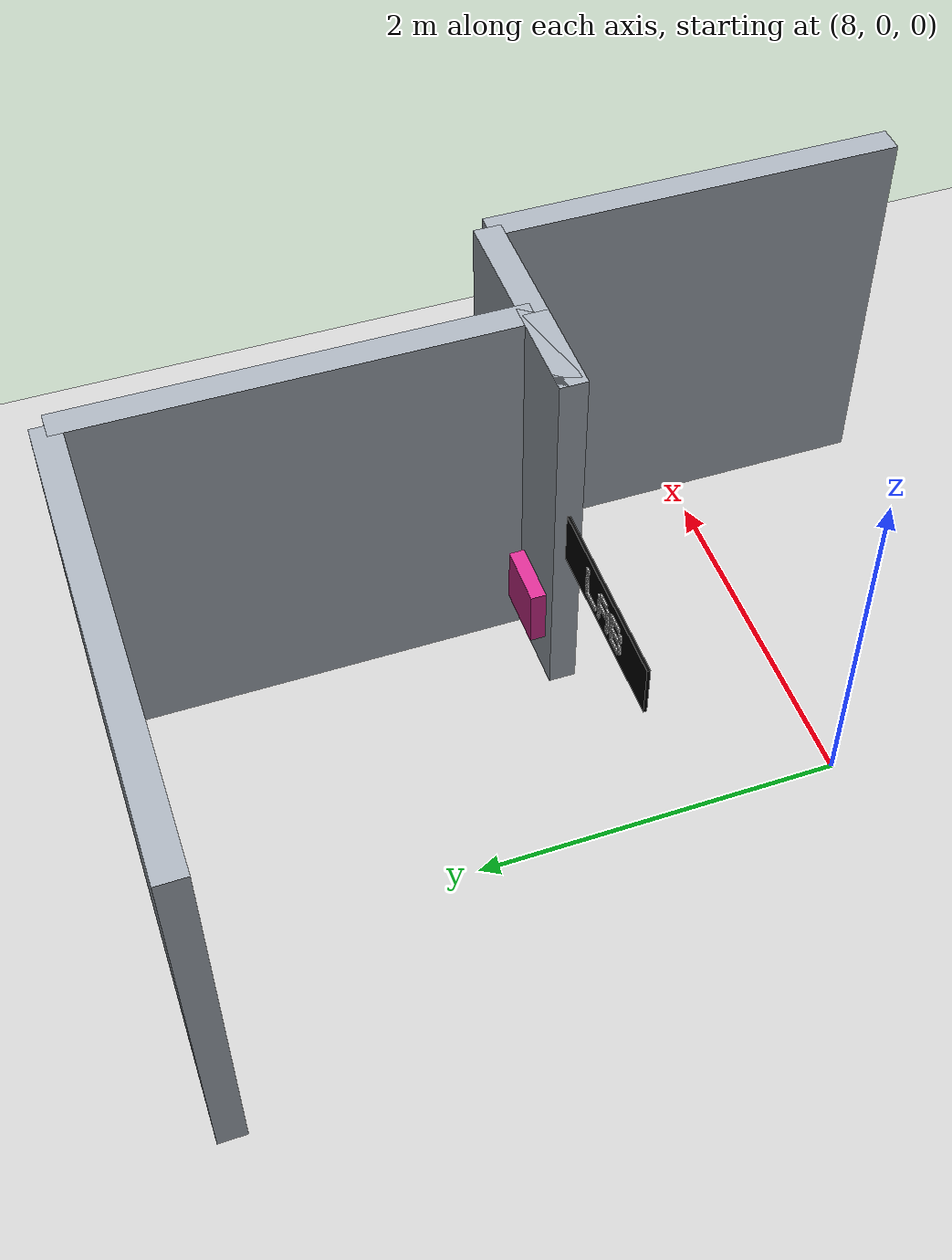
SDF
<sdf version="1.9">
 <world name="default">
  <model name="ground_plane">
   <static>true</static>
   <pose>5.15 0 -0.05 0 0 0</pose>
   <link name="body">
    <collision name="collision"><geometry><box><size>14.3 12 0.1</size></box></geometry></collision>
    <visual name="visual">
     <geometry><box><size>14.3 12 0.1</size></box></geometry>
     <material><ambient>0.8 0.8 0.8 1</ambient><diffuse>0.8 0.8 0.8 1</diffuse></material>
    </visual>
   </link>
  </model>
  <model name="end_wall">
   <static>true</static>
   <pose>10.3 0 1.1 0 0 0</pose>
   <link name="body">
    <collision name="collision"><geometry><box><size>0.15 2.3 2.2</size></box></geometry></collision>
    <visual name="visual">
     <geometry><box><size>0.15 2.3 2.2</size></box></geometry>
     <material><ambient>0.65 0.68 0.72 1</ambient><diffuse>0.65 0.68 0.72 1</diffuse></material>
    </visual>
   </link>
  </model>
  <model name="room_1_2_1">
   <static>true</static>
   <pose>9.600000000000001 2.3499999999999996 1.1 0 0 0</pose>
   <link name="body">
    <collision name="collision"><geometry><box><size>0.15 2.4 2.2</size></box></geometry></collision>
    <visual name="visual">
     <geometry><box><size>0.15 2.4 2.2</size></box></geometry>
     <material><ambient>0.65 0.68 0.72 1</ambient><diffuse>0.65 0.68 0.72 1</diffuse></material>
    </visual>
   </link>
  </model>
  <model name="room_end_1_2">
   <static>true</static>
   <pose>8.3 3.55 1.1 0 0 0</pose>
   <link name="body">
    <collision name="collision"><geometry><box><size>2.6 0.15 2.2</size></box></geometry></collision>
    <visual name="visual">
     <geometry><box><size>2.6 0.15 2.2</size></box></geometry>
     <material><ambient>0.65 0.68 0.72 1</ambient><diffuse>0.65 0.68 0.72 1</diffuse></material>
    </visual>
   </link>
  </model>
  <model name="jamb_1_2_1">
   <static>true</static>
   <pose>9.325000000000001 1.15 1.1 0 0 0</pose>
   <link name="body">
    <collision name="collision"><geometry><box><size>0.55 0.15 2.2</size></box></geometry></collision>
    <visual name="visual">
     <geometry><box><size>0.55 0.15 2.2</size></box></geometry>
     <material><ambient>0.65 0.68 0.72 1</ambient><diffuse>0.65 0.68 0.72 1</diffuse></material>
    </visual>
   </link>
  </model>
  <model name="hall_end_1">
   <static>true</static>
   <pose>9.675 1.15 1.1 0 0 0</pose>
   <link name="body">
    <collision name="collision"><geometry><box><size>1.25 0.15 2.2</size></box></geometry></collision>
    <visual name="visual">
     <geometry><box><size>1.25 0.15 2.2</size></box></geometry>
     <material><ambient>0.65 0.68 0.72 1</ambient><diffuse>0.65 0.68 0.72 1</diffuse></material>
    </visual>
   </link>
  </model>
  <model name="r3geo_base_r009_left_2_entrance_sign">
   <static>true</static>
   <pose>8.83 1.45 1.05 0 0 0</pose>
   <link name="body">
    <visual name="visual">
     <geometry><box><size>0.32 0.08 0.32</size></box></geometry>
     <material><ambient>0.84 0.18 0.57 1</ambient><diffuse>0.84 0.18 0.57 1</diffuse></material>
    </visual>
   </link>
  </model>
  <model name="readable_r3geo_base_r009_left_2_entrance_room">
   <static>true</static>
   <pose>8.3 1.25 1.43 0 0 3.14159265359</pose>
   <link name="lettering">
    <visual name="backboard">
     <geometry><box><size>1.02 0.018 0.3</size></box></geometry>
     <material>
      <ambient>.015 .015 .015 1</ambient>
      <diffuse>.015 .015 .015 1</diffuse>
      <emissive>.015 .015 .015 1</emissive>
     </material>
     <cast_shadows>false</cast_shadows>
    </visual>
    <visual name="letter_0_0_0">
     <pose>-0.208 -0.014 0.078 0 0 0</pose>
     <geometry><box><size>0.024439999999999996 0.008 0.024439999999999996</size></box></geometry>
     <material>
      <ambient>.96 .96 .96 1</ambient>
      <diffuse>.96 .96 .96 1</diffuse>
      <emissive>.96 .96 .96 1</emissive>
     </material>
     <cast_shadows>false</cast_shadows>
    </visual>
    <visual name="letter_0_1_0">
     <pose>-0.208 -0.014 0.052 0 0 0</pose>
     <geometry><box><size>0.024439999999999996 0.008 0.024439999999999996</size></box></geometry>
     <material>
      <ambient>.96 .96 .96 1</ambient>
      <diffuse>.96 .96 .96 1</diffuse>
      <emissive>.96 .96 .96 1</emissive>
     </material>
     <cast_shadows>false</cast_shadows>
    </visual>
    <visual name="letter_0_2_0">
     <pose>-0.208 -0.014 0.026 0 0 0</pose>
     <geometry><box><size>0.024439999999999996 0.008 0.024439999999999996</size></box></geometry>
     <material>
      <ambient>.96 .96 .96 1</ambient>
      <diffuse>.96 .96 .96 1</diffuse>
      <emissive>.96 .96 .96 1</emissive>
     </material>
     <cast_shadows>false</cast_shadows>
    </visual>
    <visual name="letter_0_3_0">
     <pose>-0.208 -0.014 0 0 0 0</pose>
     <geometry><box><size>0.024439999999999996 0.008 0.024439999999999996</size></box></geometry>
     <material>
      <ambient>.96 .96 .96 1</ambient>
      <diffuse>.96 .96 .96 1</diffuse>
      <emissive>.96 .96 .96 1</emissive>
     </material>
     <cast_shadows>false</cast_shadows>
    </visual>
    <visual name="letter_0_4_0">
     <pose>-0.208 -0.014 -0.026 0 0 0</pose>
     <geometry><box><size>0.024439999999999996 0.008 0.024439999999999996</size></box></geometry>
     <material>
      <ambient>.96 .96 .96 1</ambient>
      <diffuse>.96 .96 .96 1</diffuse>
      <emissive>.96 .96 .96 1</emissive>
     </material>
     <cast_shadows>false</cast_shadows>
    </visual>
    <visual name="letter_0_5_0">
     <pose>-0.208 -0.014 -0.052 0 0 0</pose>
     <geometry><box><size>0.024439999999999996 0.008 0.024439999999999996</size></box></geometry>
     <material>
      <ambient>.96 .96 .96 1</ambient>
      <diffuse>.96 .96 .96 1</diffuse>
      <emissive>.96 .96 .96 1</emissive>
     </material>
     <cast_shadows>false</cast_shadows>
    </visual>
    <visual name="letter_0_6_0">
     <pose>-0.208 -0.014 -0.078 0 0 0</pose>
     <geometry><box><size>0.024439999999999996 0.008 0.024439999999999996</size></box></geometry>
     <material>
      <ambient>.96 .96 .96 1</ambient>
      <diffuse>.96 .96 .96 1</diffuse>
      <emissive>.96 .96 .96 1</emissive>
     </material>
     <cast_shadows>false</cast_shadows>
    </visual>
    <visual name="letter_0_6_1">
     <pose>-0.182 -0.014 -0.078 0 0 0</pose>
     <geometry><box><size>0.024439999999999996 0.008 0.024439999999999996</size></box></geometry>
     <material>
      <ambient>.96 .96 .96 1</ambient>
      <diffuse>.96 .96 .96 1</diffuse>
      <emissive>.96 .96 .96 1</emissive>
     </material>
     <cast_shadows>false</cast_shadows>
    </visual>
    <visual name="letter_0_6_2">
     <pose>-0.156 -0.014 -0.078 0 0 0</pose>
     <geometry><box><size>0.024439999999999996 0.008 0.024439999999999996</size></box></geometry>
     <material>
      <ambient>.96 .96 .96 1</ambient>
      <diffuse>.96 .96 .96 1</diffuse>
      <emissive>.96 .96 .96 1</emissive>
     </material>
     <cast_shadows>false</cast_shadows>
    </visual>
    <visual name="letter_0_6_3">
     <pose>-0.13 -0.014 -0.078 0 0 0</pose>
     <geometry><box><size>0.024439999999999996 0.008 0.024439999999999996</size></box></geometry>
     <material>
      <ambient>.96 .96 .96 1</ambient>
      <diffuse>.96 .96 .96 1</diffuse>
      <emissive>.96 .96 .96 1</emissive>
     </material>
     <cast_shadows>false</cast_shadows>
    </visual>
    <visual name="letter_0_6_4">
     <pose>-0.104 -0.014 -0.078 0 0 0</pose>
     <geometry><box><size>0.024439999999999996 0.008 0.024439999999999996</size></box></geometry>
     <material>
      <ambient>.96 .96 .96 1</ambient>
      <diffuse>.96 .96 .96 1</diffuse>
      <emissive>.96 .96 .96 1</emissive>
     </material>
     <cast_shadows>false</cast_shadows>
    </visual>
    <visual name="letter_1_0_1">
     <pose>-0.026 -0.014 0.078 0 0 0</pose>
     <geometry><box><size>0.024439999999999996 0.008 0.024439999999999996</size></box></geometry>
     <material>
      <ambient>.96 .96 .96 1</ambient>
      <diffuse>.96 .96 .96 1</diffuse>
      <emissive>.96 .96 .96 1</emissive>
     </material>
     <cast_shadows>false</cast_shadows>
    </visual>
    <visual name="letter_1_0_2">
     <pose>0 -0.014 0.078 0 0 0</pose>
     <geometry><box><size>0.024439999999999996 0.008 0.024439999999999996</size></box></geometry>
     <material>
      <ambient>.96 .96 .96 1</ambient>
      <diffuse>.96 .96 .96 1</diffuse>
      <emissive>.96 .96 .96 1</emissive>
     </material>
     <cast_shadows>false</cast_shadows>
    </visual>
    <visual name="letter_1_0_3">
     <pose>0.026 -0.014 0.078 0 0 0</pose>
     <geometry><box><size>0.024439999999999996 0.008 0.024439999999999996</size></box></geometry>
     <material>
      <ambient>.96 .96 .96 1</ambient>
      <diffuse>.96 .96 .96 1</diffuse>
      <emissive>.96 .96 .96 1</emissive>
     </material>
     <cast_shadows>false</cast_shadows>
    </visual>
    <visual name="letter_1_1_0">
     <pose>-0.052 -0.014 0.052 0 0 0</pose>
     <geometry><box><size>0.024439999999999996 0.008 0.024439999999999996</size></box></geometry>
     <material>
      <ambient>.96 .96 .96 1</ambient>
      <diffuse>.96 .96 .96 1</diffuse>
      <emissive>.96 .96 .96 1</emissive>
     </material>
     <cast_shadows>false</cast_shadows>
    </visual>
    <visual name="letter_1_1_4">
     <pose>0.052 -0.014 0.052 0 0 0</pose>
     <geometry><box><size>0.024439999999999996 0.008 0.024439999999999996</size></box></geometry>
     <material>
      <ambient>.96 .96 .96 1</ambient>
      <diffuse>.96 .96 .96 1</diffuse>
      <emissive>.96 .96 .96 1</emissive>
     </material>
     <cast_shadows>false</cast_shadows>
    </visual>
    <visual name="letter_1_2_0">
     <pose>-0.052 -0.014 0.026 0 0 0</pose>
     <geometry><box><size>0.024439999999999996 0.008 0.024439999999999996</size></box></geometry>
     <material>
      <ambient>.96 .96 .96 1</ambient>
      <diffuse>.96 .96 .96 1</diffuse>
      <emissive>.96 .96 .96 1</emissive>
     </material>
     <cast_shadows>false</cast_shadows>
    </visual>
    <visual name="letter_1_2_4">
     <pose>0.052 -0.014 0.026 0 0 0</pose>
     <geometry><box><size>0.024439999999999996 0.008 0.024439999999999996</size></box></geometry>
     <material>
      <ambient>.96 .96 .96 1</ambient>
      <diffuse>.96 .96 .96 1</diffuse>
      <emissive>.96 .96 .96 1</emissive>
     </material>
     <cast_shadows>false</cast_shadows>
    </visual>
    <visual name="letter_1_3_0">
     <pose>-0.052 -0.014 0 0 0 0</pose>
     <geometry><box><size>0.024439999999999996 0.008 0.024439999999999996</size></box></geometry>
     <material>
      <ambient>.96 .96 .96 1</ambient>
      <diffuse>.96 .96 .96 1</diffuse>
      <emissive>.96 .96 .96 1</emissive>
     </material>
     <cast_shadows>false</cast_shadows>
    </visual>
    <visual name="letter_1_3_1">
     <pose>-0.026 -0.014 0 0 0 0</pose>
     <geometry><box><size>0.024439999999999996 0.008 0.024439999999999996</size></box></geometry>
     <material>
      <ambient>.96 .96 .96 1</ambient>
      <diffuse>.96 .96 .96 1</diffuse>
      <emissive>.96 .96 .96 1</emissive>
     </material>
     <cast_shadows>false</cast_shadows>
    </visual>
    <visual name="letter_1_3_2">
     <pose>0 -0.014 0 0 0 0</pose>
     <geometry><box><size>0.024439999999999996 0.008 0.024439999999999996</size></box></geometry>
     <material>
      <ambient>.96 .96 .96 1</ambient>
      <diffuse>.96 .96 .96 1</diffuse>
      <emissive>.96 .96 .96 1</emissive>
     </material>
     <cast_shadows>false</cast_shadows>
    </visual>
    <visual name="letter_1_3_3">
     <pose>0.026 -0.014 0 0 0 0</pose>
     <geometry><box><size>0.024439999999999996 0.008 0.024439999999999996</size></box></geometry>
     <material>
      <ambient>.96 .96 .96 1</ambient>
      <diffuse>.96 .96 .96 1</diffuse>
      <emissive>.96 .96 .96 1</emissive>
     </material>
     <cast_shadows>false</cast_shadows>
    </visual>
    <visual name="letter_1_3_4">
     <pose>0.052 -0.014 0 0 0 0</pose>
     <geometry><box><size>0.024439999999999996 0.008 0.024439999999999996</size></box></geometry>
     <material>
      <ambient>.96 .96 .96 1</ambient>
      <diffuse>.96 .96 .96 1</diffuse>
      <emissive>.96 .96 .96 1</emissive>
     </material>
     <cast_shadows>false</cast_shadows>
    </visual>
    <visual name="letter_1_4_0">
     <pose>-0.052 -0.014 -0.026 0 0 0</pose>
     <geometry><box><size>0.024439999999999996 0.008 0.024439999999999996</size></box></geometry>
     <material>
      <ambient>.96 .96 .96 1</ambient>
      <diffuse>.96 .96 .96 1</diffuse>
      <emissive>.96 .96 .96 1</emissive>
     </material>
     <cast_shadows>false</cast_shadows>
    </visual>
    <visual name="letter_1_4_4">
     <pose>0.052 -0.014 -0.026 0 0 0</pose>
     <geometry><box><size>0.024439999999999996 0.008 0.024439999999999996</size></box></geometry>
     <material>
      <ambient>.96 .96 .96 1</ambient>
      <diffuse>.96 .96 .96 1</diffuse>
      <emissive>.96 .96 .96 1</emissive>
     </material>
     <cast_shadows>false</cast_shadows>
    </visual>
    <visual name="letter_1_5_0">
     <pose>-0.052 -0.014 -0.052 0 0 0</pose>
     <geometry><box><size>0.024439999999999996 0.008 0.024439999999999996</size></box></geometry>
     <material>
      <ambient>.96 .96 .96 1</ambient>
      <diffuse>.96 .96 .96 1</diffuse>
      <emissive>.96 .96 .96 1</emissive>
     </material>
     <cast_shadows>false</cast_shadows>
    </visual>
    <visual name="letter_1_5_4">
     <pose>0.052 -0.014 -0.052 0 0 0</pose>
     <geometry><box><size>0.024439999999999996 0.008 0.024439999999999996</size></box></geometry>
     <material>
      <ambient>.96 .96 .96 1</ambient>
      <diffuse>.96 .96 .96 1</diffuse>
      <emissive>.96 .96 .96 1</emissive>
     </material>
     <cast_shadows>false</cast_shadows>
    </visual>
    <visual name="letter_1_6_0">
     <pose>-0.052 -0.014 -0.078 0 0 0</pose>
     <geometry><box><size>0.024439999999999996 0.008 0.024439999999999996</size></box></geometry>
     <material>
      <ambient>.96 .96 .96 1</ambient>
      <diffuse>.96 .96 .96 1</diffuse>
      <emissive>.96 .96 .96 1</emissive>
     </material>
     <cast_shadows>false</cast_shadows>
    </visual>
    <visual name="letter_1_6_4">
     <pose>0.052 -0.014 -0.078 0 0 0</pose>
     <geometry><box><size>0.024439999999999996 0.008 0.024439999999999996</size></box></geometry>
     <material>
      <ambient>.96 .96 .96 1</ambient>
      <diffuse>.96 .96 .96 1</diffuse>
      <emissive>.96 .96 .96 1</emissive>
     </material>
     <cast_shadows>false</cast_shadows>
    </visual>
    <visual name="letter_2_0_0">
     <pose>0.104 -0.014 0.078 0 0 0</pose>
     <geometry><box><size>0.024439999999999996 0.008 0.024439999999999996</size></box></geometry>
     <material>
      <ambient>.96 .96 .96 1</ambient>
      <diffuse>.96 .96 .96 1</diffuse>
      <emissive>.96 .96 .96 1</emissive>
     </material>
     <cast_shadows>false</cast_shadows>
    </visual>
    <visual name="letter_2_0_1">
     <pose>0.13 -0.014 0.078 0 0 0</pose>
     <geometry><box><size>0.024439999999999996 0.008 0.024439999999999996</size></box></geometry>
     <material>
      <ambient>.96 .96 .96 1</ambient>
      <diffuse>.96 .96 .96 1</diffuse>
      <emissive>.96 .96 .96 1</emissive>
     </material>
     <cast_shadows>false</cast_shadows>
    </visual>
    <visual name="letter_2_0_2">
     <pose>0.156 -0.014 0.078 0 0 0</pose>
     <geometry><box><size>0.024439999999999996 0.008 0.024439999999999996</size></box></geometry>
     <material>
      <ambient>.96 .96 .96 1</ambient>
      <diffuse>.96 .96 .96 1</diffuse>
      <emissive>.96 .96 .96 1</emissive>
     </material>
     <cast_shadows>false</cast_shadows>
    </visual>
    <visual name="letter_2_0_3">
     <pose>0.182 -0.014 0.078 0 0 0</pose>
     <geometry><box><size>0.024439999999999996 0.008 0.024439999999999996</size></box></geometry>
     <material>
      <ambient>.96 .96 .96 1</ambient>
      <diffuse>.96 .96 .96 1</diffuse>
      <emissive>.96 .96 .96 1</emissive>
     </material>
     <cast_shadows>false</cast_shadows>
    </visual>
    <visual name="letter_2_1_0">
     <pose>0.104 -0.014 0.052 0 0 0</pose>
     <geometry><box><size>0.024439999999999996 0.008 0.024439999999999996</size></box></geometry>
     <material>
      <ambient>.96 .96 .96 1</ambient>
      <diffuse>.96 .96 .96 1</diffuse>
      <emissive>.96 .96 .96 1</emissive>
     </material>
     <cast_shadows>false</cast_shadows>
    </visual>
    <visual name="letter_2_1_4">
     <pose>0.208 -0.014 0.052 0 0 0</pose>
     <geometry><box><size>0.024439999999999996 0.008 0.024439999999999996</size></box></geometry>
     <material>
      <ambient>.96 .96 .96 1</ambient>
      <diffuse>.96 .96 .96 1</diffuse>
      <emissive>.96 .96 .96 1</emissive>
     </material>
     <cast_shadows>false</cast_shadows>
    </visual>
    <visual name="letter_2_2_0">
     <pose>0.104 -0.014 0.026 0 0 0</pose>
     <geometry><box><size>0.024439999999999996 0.008 0.024439999999999996</size></box></geometry>
     <material>
      <ambient>.96 .96 .96 1</ambient>
      <diffuse>.96 .96 .96 1</diffuse>
      <emissive>.96 .96 .96 1</emissive>
     </material>
     <cast_shadows>false</cast_shadows>
    </visual>
    <visual name="letter_2_2_4">
     <pose>0.208 -0.014 0.026 0 0 0</pose>
     <geometry><box><size>0.024439999999999996 0.008 0.024439999999999996</size></box></geometry>
     <material>
      <ambient>.96 .96 .96 1</ambient>
      <diffuse>.96 .96 .96 1</diffuse>
      <emissive>.96 .96 .96 1</emissive>
     </material>
     <cast_shadows>false</cast_shadows>
    </visual>
    <visual name="letter_2_3_0">
     <pose>0.104 -0.014 0 0 0 0</pose>
     <geometry><box><size>0.024439999999999996 0.008 0.024439999999999996</size></box></geometry>
     <material>
      <ambient>.96 .96 .96 1</ambient>
      <diffuse>.96 .96 .96 1</diffuse>
      <emissive>.96 .96 .96 1</emissive>
     </material>
     <cast_shadows>false</cast_shadows>
    </visual>
    <visual name="letter_2_3_1">
     <pose>0.13 -0.014 0 0 0 0</pose>
     <geometry><box><size>0.024439999999999996 0.008 0.024439999999999996</size></box></geometry>
     <material>
      <ambient>.96 .96 .96 1</ambient>
      <diffuse>.96 .96 .96 1</diffuse>
      <emissive>.96 .96 .96 1</emissive>
     </material>
     <cast_shadows>false</cast_shadows>
    </visual>
    <visual name="letter_2_3_2">
     <pose>0.156 -0.014 0 0 0 0</pose>
     <geometry><box><size>0.024439999999999996 0.008 0.024439999999999996</size></box></geometry>
     <material>
      <ambient>.96 .96 .96 1</ambient>
      <diffuse>.96 .96 .96 1</diffuse>
      <emissive>.96 .96 .96 1</emissive>
     </material>
     <cast_shadows>false</cast_shadows>
    </visual>
    <visual name="letter_2_3_3">
     <pose>0.182 -0.014 0 0 0 0</pose>
     <geometry><box><size>0.024439999999999996 0.008 0.024439999999999996</size></box></geometry>
     <material>
      <ambient>.96 .96 .96 1</ambient>
      <diffuse>.96 .96 .96 1</diffuse>
      <emissive>.96 .96 .96 1</emissive>
     </material>
     <cast_shadows>false</cast_shadows>
    </visual>
    <visual name="letter_2_4_0">
     <pose>0.104 -0.014 -0.026 0 0 0</pose>
     <geometry><box><size>0.024439999999999996 0.008 0.024439999999999996</size></box></geometry>
     <material>
      <ambient>.96 .96 .96 1</ambient>
      <diffuse>.96 .96 .96 1</diffuse>
      <emissive>.96 .96 .96 1</emissive>
     </material>
     <cast_shadows>false</cast_shadows>
    </visual>
    <visual name="letter_2_4_4">
     <pose>0.208 -0.014 -0.026 0 0 0</pose>
     <geometry><box><size>0.024439999999999996 0.008 0.024439999999999996</size></box></geometry>
     <material>
      <ambient>.96 .96 .96 1</ambient>
      <diffuse>.96 .96 .96 1</diffuse>
      <emissive>.96 .96 .96 1</emissive>
     </material>
     <cast_shadows>false</cast_shadows>
    </visual>
    <visual name="letter_2_5_0">
     <pose>0.104 -0.014 -0.052 0 0 0</pose>
     <geometry><box><size>0.024439999999999996 0.008 0.024439999999999996</size></box></geometry>
     <material>
      <ambient>.96 .96 .96 1</ambient>
      <diffuse>.96 .96 .96 1</diffuse>
      <emissive>.96 .96 .96 1</emissive>
     </material>
     <cast_shadows>false</cast_shadows>
    </visual>
    <visual name="letter_2_5_4">
     <pose>0.208 -0.014 -0.052 0 0 0</pose>
     <geometry><box><size>0.024439999999999996 0.008 0.024439999999999996</size></box></geometry>
     <material>
      <ambient>.96 .96 .96 1</ambient>
      <diffuse>.96 .96 .96 1</diffuse>
      <emissive>.96 .96 .96 1</emissive>
     </material>
     <cast_shadows>false</cast_shadows>
    </visual>
    <visual name="letter_2_6_0">
     <pose>0.104 -0.014 -0.078 0 0 0</pose>
     <geometry><box><size>0.024439999999999996 0.008 0.024439999999999996</size></box></geometry>
     <material>
      <ambient>.96 .96 .96 1</ambient>
      <diffuse>.96 .96 .96 1</diffuse>
      <emissive>.96 .96 .96 1</emissive>
     </material>
     <cast_shadows>false</cast_shadows>
    </visual>
    <visual name="letter_2_6_1">
     <pose>0.13 -0.014 -0.078 0 0 0</pose>
     <geometry><box><size>0.024439999999999996 0.008 0.024439999999999996</size></box></geometry>
     <material>
      <ambient>.96 .96 .96 1</ambient>
      <diffuse>.96 .96 .96 1</diffuse>
      <emissive>.96 .96 .96 1</emissive>
     </material>
     <cast_shadows>false</cast_shadows>
    </visual>
    <visual name="letter_2_6_2">
     <pose>0.156 -0.014 -0.078 0 0 0</pose>
     <geometry><box><size>0.024439999999999996 0.008 0.024439999999999996</size></box></geometry>
     <material>
      <ambient>.96 .96 .96 1</ambient>
      <diffuse>.96 .96 .96 1</diffuse>
      <emissive>.96 .96 .96 1</emissive>
     </material>
     <cast_shadows>false</cast_shadows>
    </visual>
    <visual name="letter_2_6_3">
     <pose>0.182 -0.014 -0.078 0 0 0</pose>
     <geometry><box><size>0.024439999999999996 0.008 0.024439999999999996</size></box></geometry>
     <material>
      <ambient>.96 .96 .96 1</ambient>
      <diffuse>.96 .96 .96 1</diffuse>
      <emissive>.96 .96 .96 1</emissive>
     </material>
     <cast_shadows>false</cast_shadows>
    </visual>
   </link>
  </model>
 </world>
</sdf>
